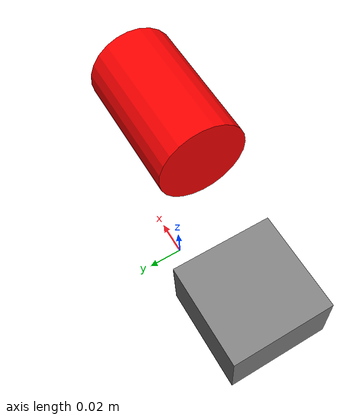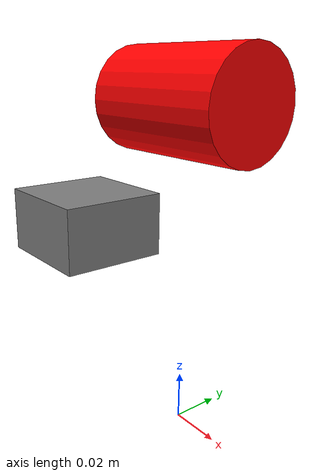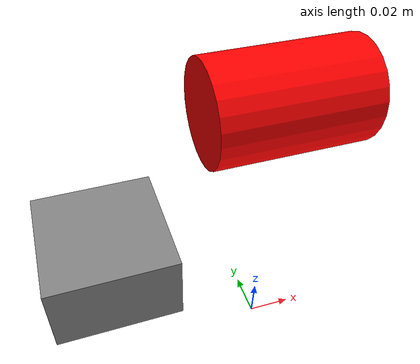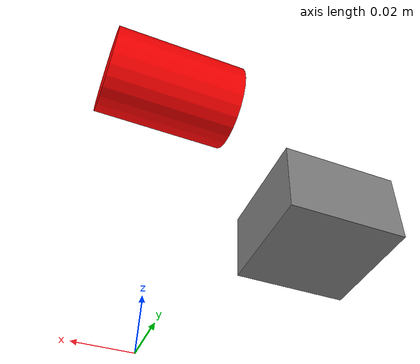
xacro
<?xml version="1.0"?>
<robot name="dtw_robot" xmlns:xacro="http://ros.org/wiki/xacro">
  <xacro:include filename="$(find lrs_orion_simulator)/xacro/move_macro.xacro" />
  <xacro:include filename="$(find lrs_orion_simulator)/xacro/laser_macro.xacro" />

  <link name="boom_link"/>

  <xacro:body_macro prefix="body_link" parent="boom_link" />

  <xacro:laser_macro prefix="front_laser" parent="boom_link" xyz="0 0 0.13" rpy="0 ${radians(90)} 0"/> <!--rpy -> xyz axis-->

</robot>

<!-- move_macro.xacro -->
<robot name="dtw_robot" xmlns:xacro="http://ros.org/wiki/xacro">
  <material name="gray">
    <color rgba="0.5 0.5 0.5 2.5"/>
  </material>
  <material name="red">
    <color rgba="1.0 0.0 0.0 2.5"/>
  </material>

  <xacro:macro name="body_macro"  params="parent prefix">

    <joint name="body_joint" type="fixed">
      <parent link="${parent}"/>
      <child  link="${prefix}"/>
      <origin xyz="-0.07 0 0.07" rpy="0 0 0"/>
    </joint>

    <link name="${prefix}">
      <inertial>
        <origin xyz="0 0 0" rpy="0 0 0"/>
        <mass value="1.0"/>
        <inertia ixx="0.001" ixy="0.0" ixz="0.0" iyy="0.001" iyz="0.0" izz="0.001"/>
      </inertial>
      <visual>
        <origin xyz="0 0 0" rpy="0 0 0" />
        <geometry>
          <box size="0.05 0.05 0.03" />
        </geometry>
        <material name="gray" />
      </visual>
      <collision>
        <origin xyz="0 0 0" rpy="0 0 0" />
        <geometry>
          <box size="0.05 0.05 0.03" />
        </geometry>
      </collision>
    </link>
    <gazebo reference="body_link">
      <material>Gazebo/Gray</material>
    </gazebo>
  </xacro:macro>
</robot>

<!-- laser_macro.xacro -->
<!-- frame_id: "front_laser_link" -->
<robot name="dtw_robot" xmlns:xacro="http://ros.org/wiki/xacro">
  <xacro:macro name="laser_macro" params="parent prefix xyz rpy">

    <joint name="${prefix}_joint" type="fixed">
      <parent link="${parent}"/>
      <child  link="${prefix}_link"/>
      <origin xyz="${xyz}" rpy="${rpy}"/>
    </joint>

    <link name="${prefix}_link">
      <visual>
        <origin xyz="0 0 0" rpy="0 0 0" />
        <geometry>
          <cylinder radius="0.02" length="0.06" />
        </geometry>
        <material name="red" />
      </visual>
      <collision>
        <origin xyz="0 0 0" rpy="0 0 0"/>
        <geometry>
          <cylinder radius="0.02" length="0.06" />
        </geometry>
      </collision>
    </link>
    <gazebo reference="${prefix}_link">
      <material>Gazebo/Red</material>
      <sensor type="ray" name="${prefix}">
        <pose>0 0 0 0 0 0</pose>
        <visualize>true</visualize>
        <update_rate>30</update_rate>
        <ray>
          <scan>
            <horizontal>
              <samples>1441</samples>
              <resolution>1</resolution>
              <min_angle>${radians(-180)}</min_angle>
              <max_angle>${radians( 180)}</max_angle>
            </horizontal>
          </scan>
          <range>
            <min>5.0</min>
            <max>250.0</max>
            <resolution>0.01</resolution>
          </range>
          <noise>
            <type>gaussian</type>
            <mean>0.0</mean>
            <stddev>0.01</stddev>
          </noise>
        </ray>
        <plugin name="gazebo_ros_lidar_controller" filename="libgazebo_ros_laser.so">
          <topicName>/${prefix}_link/scan</topicName>
          <frameName>${prefix}_link</frameName>
        </plugin>
      </sensor>
    </gazebo>
  </xacro:macro>
</robot>
